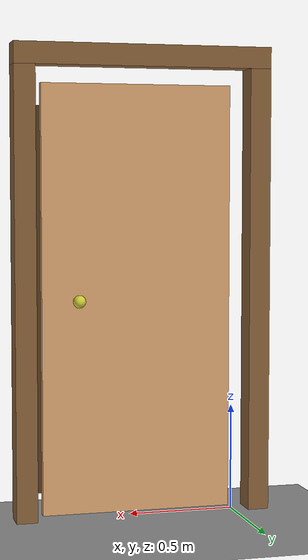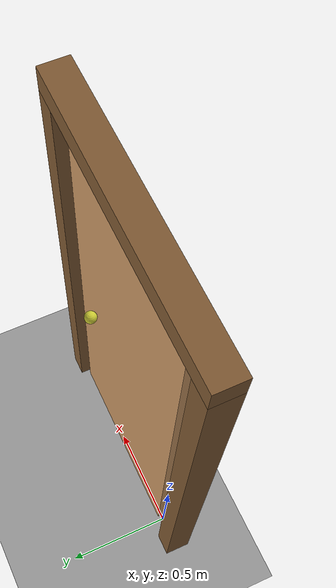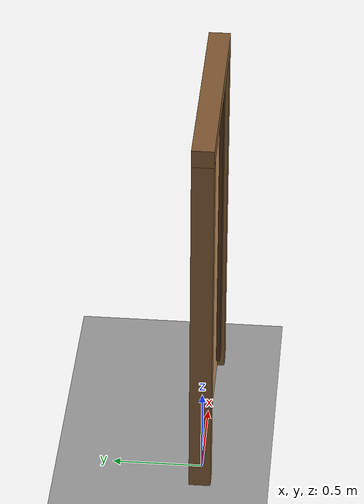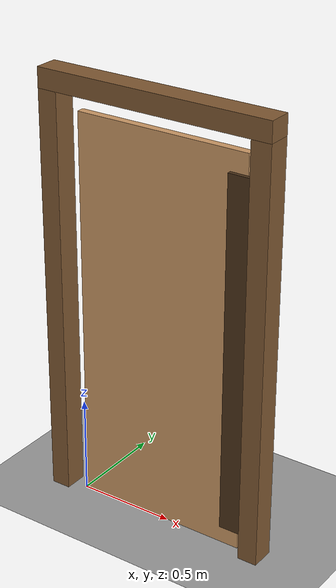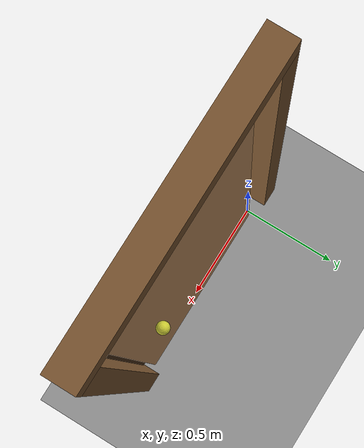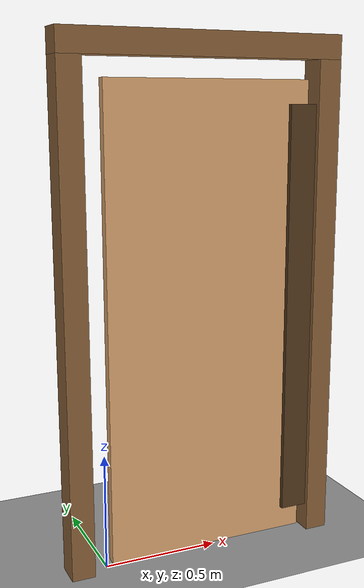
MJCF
<mujoco model="self_closing_door">
  <compiler angle="radian"/>
  <option timestep="0.002" gravity="0 0 -9.81"/>
  <visual>
    <global offwidth="1280" offheight="720"/>
  </visual>
  <worldbody>
    <light name="sun" pos="1 -3 4" dir="-0.2 0.6 -1" diffuse="0.8 0.8 0.8"/>
    <geom name="floor" type="plane" size="5 5 0.1" rgba="0.6 0.6 0.6 1"/>
    <geom name="hinge_post" type="box" pos="-0.12 0 1.05" size="0.05 0.06 1.05" contype="0" conaffinity="0" rgba="0.5 0.35 0.2 1"/>
    <geom name="latch_post" type="box" pos="1.0 0 1.05" size="0.05 0.06 1.05" contype="0" conaffinity="0" rgba="0.5 0.35 0.2 1"/>
    <geom name="lintel" type="box" pos="0.44 0 2.15" size="0.61 0.06 0.05" contype="0" conaffinity="0" rgba="0.5 0.35 0.2 1"/>
    <geom name="door_stop" type="box" pos="0.89 -0.03 1.02" size="0.06 0.01 0.9" rgba="0.3 0.2 0.1 1"/>
    <body name="door" pos="0 0 1.02">
      <joint name="hinge" type="hinge" axis="0 0 1" pos="0 0 0" stiffness="20" springref="0" damping="18" limited="true" range="-0.3 1.7"/>
      <geom name="door_panel" type="box" pos="0.47 0 0" size="0.45 0.02 1.0" mass="36" rgba="0.8 0.6 0.4 1"/>
      <geom name="door_handle" type="sphere" pos="0.75 0.05 0" size="0.03" contype="0" conaffinity="0" mass="0.2" rgba="0.8 0.8 0.2 1"/>
    </body>
  </worldbody>
  <keyframe>
    <key name="start" qpos="1.4" qvel="0"/>
  </keyframe>
</mujoco>
